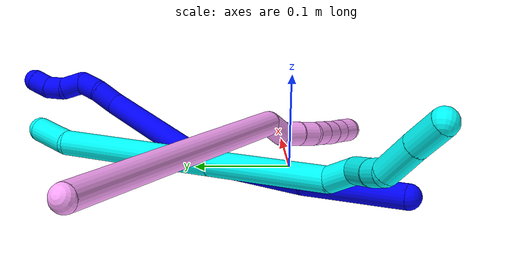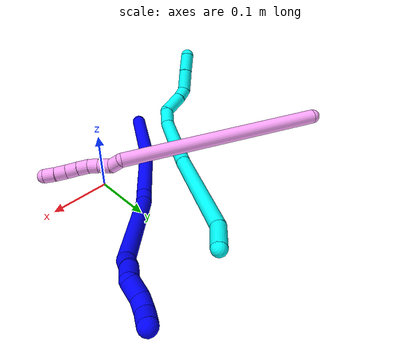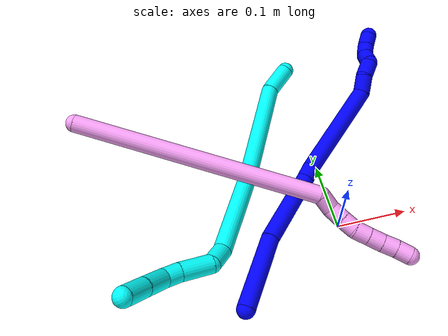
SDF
<sdf version="1.7">
 <world name="default">
  <model name="1">
   <static>0</static>
   <link name="1">
    <collision name="collision-cylinder-e_1_1_4">
     <pose>0.026451 0.00169 0.045942 -0.036772 0.522102 -0.009825</pose>
     <geometry><cylinder><radius>0.0125</radius><length>0.106079</length></cylinder></geometry>
     <surface>
      <friction><ode><mu>1.16</mu><mu2>1.16</mu2><slip1>0</slip1><slip2>0</slip2></ode></friction>
      <contact><ode><kp>1e+06</kp><kd>1</kd><max_vel>0</max_vel><min_depth>0.001</min_depth></ode></contact>
     </surface>
    </collision>
    <visual name="visual-cylinder-e_1_1_4">
     <pose>0.026451 0.00169 0.045942 -0.036772 0.522102 -0.009825</pose>
     <geometry><cylinder><radius>0.0125</radius><length>0.106079</length></cylinder></geometry>
     <material><ambient>0 0 1 1</ambient></material>
    </visual>
    <collision name="collision-cylinder-e_2_4_5">
     <pose>0.088689 0.007855 0.134403 -0.104845 0.696934 -0.03812</pose>
     <geometry><cylinder><radius>0.0125</radius><length>0.111509</length></cylinder></geometry>
     <surface>
      <friction><ode><mu>1.16</mu><mu2>1.16</mu2><slip1>0</slip1><slip2>0</slip2></ode></friction>
      <contact><ode><kp>1e+06</kp><kd>1</kd><max_vel>0</max_vel><min_depth>0.001</min_depth></ode></contact>
     </surface>
    </collision>
    <visual name="visual-cylinder-e_2_4_5">
     <pose>0.088689 0.007855 0.134403 -0.104845 0.696934 -0.03812</pose>
     <geometry><cylinder><radius>0.0125</radius><length>0.111509</length></cylinder></geometry>
     <material><ambient>0 0 1 1</ambient></material>
    </visual>
    <collision name="collision-cylinder-e_3_5_6">
     <pose>0.131276 0.012189 0.185047 0.017265 0.696705 0.00627</pose>
     <geometry><cylinder><radius>0.0125</radius><length>0.021194</length></cylinder></geometry>
     <surface>
      <friction><ode><mu>1.16</mu><mu2>1.16</mu2><slip1>0</slip1><slip2>0</slip2></ode></friction>
      <contact><ode><kp>1e+06</kp><kd>1</kd><max_vel>0</max_vel><min_depth>0.001</min_depth></ode></contact>
     </surface>
    </collision>
    <visual name="visual-cylinder-e_3_5_6">
     <pose>0.131276 0.012189 0.185047 0.017265 0.696705 0.00627</pose>
     <geometry><cylinder><radius>0.0125</radius><length>0.021194</length></cylinder></geometry>
     <material><ambient>0 0 1 1</ambient></material>
    </visual>
    <collision name="collision-cylinder-e_4_6_7">
     <pose>0.19371 0.00181 0.239351 0.218181 0.866195 0.101197</pose>
     <geometry><cylinder><radius>0.0125</radius><length>0.146047</length></cylinder></geometry>
     <surface>
      <friction><ode><mu>1.16</mu><mu2>1.16</mu2><slip1>0</slip1><slip2>0</slip2></ode></friction>
      <contact><ode><kp>1e+06</kp><kd>1</kd><max_vel>0</max_vel><min_depth>0.001</min_depth></ode></contact>
     </surface>
    </collision>
    <visual name="visual-cylinder-e_4_6_7">
     <pose>0.19371 0.00181 0.239351 0.218181 0.866195 0.101197</pose>
     <geometry><cylinder><radius>0.0125</radius><length>0.146047</length></cylinder></geometry>
     <material><ambient>0 0 1 1</ambient></material>
    </visual>
    <collision name="collision-cylinder-e_5_7_8">
     <pose>0.25574 -0.015347 0.294966 0.632609 0.500225 0.166834</pose>
     <geometry><cylinder><radius>0.0125</radius><length>0.02667</length></cylinder></geometry>
     <surface>
      <friction><ode><mu>1.16</mu><mu2>1.16</mu2><slip1>0</slip1><slip2>0</slip2></ode></friction>
      <contact><ode><kp>1e+06</kp><kd>1</kd><max_vel>0</max_vel><min_depth>0.001</min_depth></ode></contact>
     </surface>
    </collision>
    <visual name="visual-cylinder-e_5_7_8">
     <pose>0.25574 -0.015347 0.294966 0.632609 0.500225 0.166834</pose>
     <geometry><cylinder><radius>0.0125</radius><length>0.02667</length></cylinder></geometry>
     <material><ambient>0 0 1 1</ambient></material>
    </visual>
    <collision name="collision-cylinder-e_6_8_9">
     <pose>0.26962 -0.02511 0.313443 0.304909 0.668431 0.106604</pose>
     <geometry><cylinder><radius>0.0125</radius><length>0.024151</length></cylinder></geometry>
     <surface>
      <friction><ode><mu>1.16</mu><mu2>1.16</mu2><slip1>0</slip1><slip2>0</slip2></ode></friction>
      <contact><ode><kp>1e+06</kp><kd>1</kd><max_vel>0</max_vel><min_depth>0.001</min_depth></ode></contact>
     </surface>
    </collision>
    <visual name="visual-cylinder-e_6_8_9">
     <pose>0.26962 -0.02511 0.313443 0.304909 0.668431 0.106604</pose>
     <geometry><cylinder><radius>0.0125</radius><length>0.024151</length></cylinder></geometry>
     <material><ambient>0 0 1 1</ambient></material>
    </visual>
    <collision name="collision-cylinder-e_7_9_10">
     <pose>0.27748 -0.025844 0.334129 -0.179329 0.03179 -0.002858</pose>
     <geometry><cylinder><radius>0.0125</radius><length>0.023684</length></cylinder></geometry>
     <surface>
      <friction><ode><mu>1.16</mu><mu2>1.16</mu2><slip1>0</slip1><slip2>0</slip2></ode></friction>
      <contact><ode><kp>1e+06</kp><kd>1</kd><max_vel>0</max_vel><min_depth>0.001</min_depth></ode></contact>
     </surface>
    </collision>
    <visual name="visual-cylinder-e_7_9_10">
     <pose>0.27748 -0.025844 0.334129 -0.179329 0.03179 -0.002858</pose>
     <geometry><cylinder><radius>0.0125</radius><length>0.023684</length></cylinder></geometry>
     <material><ambient>0 0 1 1</ambient></material>
    </visual>
    <collision name="collision-cylinder-e_8_10_11">
     <pose>0.281664 -0.024154 0.355162 0.044833 0.385001 0.00874</pose>
     <geometry><cylinder><radius>0.0125</radius><length>0.020277</length></cylinder></geometry>
     <surface>
      <friction><ode><mu>1.16</mu><mu2>1.16</mu2><slip1>0</slip1><slip2>0</slip2></ode></friction>
      <contact><ode><kp>1e+06</kp><kd>1</kd><max_vel>0</max_vel><min_depth>0.001</min_depth></ode></contact>
     </surface>
    </collision>
    <visual name="visual-cylinder-e_8_10_11">
     <pose>0.281664 -0.024154 0.355162 0.044833 0.385001 0.00874</pose>
     <geometry><cylinder><radius>0.0125</radius><length>0.020277</length></cylinder></geometry>
     <material><ambient>0 0 1 1</ambient></material>
    </visual>
    <collision name="collision-cylinder-e_9_11_2">
     <pose>0.290997 -0.027704 0.372524 0.373934 0.572766 0.111302</pose>
     <geometry><cylinder><radius>0.0125</radius><length>0.02039</length></cylinder></geometry>
     <surface>
      <friction><ode><mu>1.16</mu><mu2>1.16</mu2><slip1>0</slip1><slip2>0</slip2></ode></friction>
      <contact><ode><kp>1e+06</kp><kd>1</kd><max_vel>0</max_vel><min_depth>0.001</min_depth></ode></contact>
     </surface>
    </collision>
    <visual name="visual-cylinder-e_9_11_2">
     <pose>0.290997 -0.027704 0.372524 0.373934 0.572766 0.111302</pose>
     <geometry><cylinder><radius>0.0125</radius><length>0.02039</length></cylinder></geometry>
     <material><ambient>0 0 1 1</ambient></material>
    </visual>
    <collision name="collision-sphere-2">
     <pose>0.296522 -0.030834 0.3805 0 -0 0</pose>
     <geometry><sphere><radius>0.0125</radius></sphere></geometry>
     <surface>
      <friction><ode><mu>1.16</mu><mu2>1.16</mu2><slip1>0</slip1><slip2>0</slip2></ode></friction>
      <contact><ode><kp>1e+06</kp><kd>1</kd><max_vel>0</max_vel><min_depth>0.001</min_depth></ode></contact>
     </surface>
    </collision>
    <visual name="visual-sphere-2">
     <pose>0.296522 -0.030834 0.3805 0 -0 0</pose>
     <geometry><sphere><radius>0.0125</radius></sphere></geometry>
     <material><ambient>0 0 1 1</ambient></material>
    </visual>
    <collision name="collision-sphere-11">
     <pose>0.285472 -0.024575 0.364549 0 -0 0</pose>
     <geometry><sphere><radius>0.0125</radius></sphere></geometry>
     <surface>
      <friction><ode><mu>1.16</mu><mu2>1.16</mu2><slip1>0</slip1><slip2>0</slip2></ode></friction>
      <contact><ode><kp>1e+06</kp><kd>1</kd><max_vel>0</max_vel><min_depth>0.001</min_depth></ode></contact>
     </surface>
    </collision>
    <visual name="visual-sphere-11">
     <pose>0.285472 -0.024575 0.364549 0 -0 0</pose>
     <geometry><sphere><radius>0.0125</radius></sphere></geometry>
     <material><ambient>0 0 1 1</ambient></material>
    </visual>
    <collision name="collision-sphere-10">
     <pose>0.277857 -0.023732 0.345775 0 -0 0</pose>
     <geometry><sphere><radius>0.0125</radius></sphere></geometry>
     <surface>
      <friction><ode><mu>1.16</mu><mu2>1.16</mu2><slip1>0</slip1><slip2>0</slip2></ode></friction>
      <contact><ode><kp>1e+06</kp><kd>1</kd><max_vel>0</max_vel><min_depth>0.001</min_depth></ode></contact>
     </surface>
    </collision>
    <visual name="visual-sphere-10">
     <pose>0.277857 -0.023732 0.345775 0 -0 0</pose>
     <geometry><sphere><radius>0.0125</radius></sphere></geometry>
     <material><ambient>0 0 1 1</ambient></material>
    </visual>
    <collision name="collision-sphere-9">
     <pose>0.277104 -0.027955 0.322482 0 -0 0</pose>
     <geometry><sphere><radius>0.0125</radius></sphere></geometry>
     <surface>
      <friction><ode><mu>1.16</mu><mu2>1.16</mu2><slip1>0</slip1><slip2>0</slip2></ode></friction>
      <contact><ode><kp>1e+06</kp><kd>1</kd><max_vel>0</max_vel><min_depth>0.001</min_depth></ode></contact>
     </surface>
    </collision>
    <visual name="visual-sphere-9">
     <pose>0.277104 -0.027955 0.322482 0 -0 0</pose>
     <geometry><sphere><radius>0.0125</radius></sphere></geometry>
     <material><ambient>0 0 1 1</ambient></material>
    </visual>
    <collision name="collision-sphere-4">
     <pose>0.052902 0.00338 0.091884 0 -0 0</pose>
     <geometry><sphere><radius>0.0125</radius></sphere></geometry>
     <surface>
      <friction><ode><mu>1.16</mu><mu2>1.16</mu2><slip1>0</slip1><slip2>0</slip2></ode></friction>
      <contact><ode><kp>1e+06</kp><kd>1</kd><max_vel>0</max_vel><min_depth>0.001</min_depth></ode></contact>
     </surface>
    </collision>
    <visual name="visual-sphere-4">
     <pose>0.052902 0.00338 0.091884 0 -0 0</pose>
     <geometry><sphere><radius>0.0125</radius></sphere></geometry>
     <material><ambient>0 0 1 1</ambient></material>
    </visual>
    <collision name="collision-sphere-1">
     <geometry><sphere><radius>0.0125</radius></sphere></geometry>
     <surface>
      <friction><ode><mu>1.16</mu><mu2>1.16</mu2><slip1>0</slip1><slip2>0</slip2></ode></friction>
      <contact><ode><kp>1e+06</kp><kd>1</kd><max_vel>0</max_vel><min_depth>0.001</min_depth></ode></contact>
     </surface>
    </collision>
    <visual name="visual-sphere-1">
     <geometry><sphere><radius>0.0125</radius></sphere></geometry>
     <material><ambient>0 0 1 1</ambient></material>
    </visual>
    <collision name="collision-sphere-8">
     <pose>0.262136 -0.022265 0.304403 0 -0 0</pose>
     <geometry><sphere><radius>0.0125</radius></sphere></geometry>
     <surface>
      <friction><ode><mu>1.16</mu><mu2>1.16</mu2><slip1>0</slip1><slip2>0</slip2></ode></friction>
      <contact><ode><kp>1e+06</kp><kd>1</kd><max_vel>0</max_vel><min_depth>0.001</min_depth></ode></contact>
     </surface>
    </collision>
    <visual name="visual-sphere-8">
     <pose>0.262136 -0.022265 0.304403 0 -0 0</pose>
     <geometry><sphere><radius>0.0125</radius></sphere></geometry>
     <material><ambient>0 0 1 1</ambient></material>
    </visual>
    <collision name="collision-sphere-5">
     <pose>0.124476 0.012329 0.176921 0 -0 0</pose>
     <geometry><sphere><radius>0.0125</radius></sphere></geometry>
     <surface>
      <friction><ode><mu>1.16</mu><mu2>1.16</mu2><slip1>0</slip1><slip2>0</slip2></ode></friction>
      <contact><ode><kp>1e+06</kp><kd>1</kd><max_vel>0</max_vel><min_depth>0.001</min_depth></ode></contact>
     </surface>
    </collision>
    <visual name="visual-sphere-5">
     <pose>0.124476 0.012329 0.176921 0 -0 0</pose>
     <geometry><sphere><radius>0.0125</radius></sphere></geometry>
     <material><ambient>0 0 1 1</ambient></material>
    </visual>
    <collision name="collision-sphere-6">
     <pose>0.138076 0.012048 0.193173 0 -0 0</pose>
     <geometry><sphere><radius>0.0125</radius></sphere></geometry>
     <surface>
      <friction><ode><mu>1.16</mu><mu2>1.16</mu2><slip1>0</slip1><slip2>0</slip2></ode></friction>
      <contact><ode><kp>1e+06</kp><kd>1</kd><max_vel>0</max_vel><min_depth>0.001</min_depth></ode></contact>
     </surface>
    </collision>
    <visual name="visual-sphere-6">
     <pose>0.138076 0.012048 0.193173 0 -0 0</pose>
     <geometry><sphere><radius>0.0125</radius></sphere></geometry>
     <material><ambient>0 0 1 1</ambient></material>
    </visual>
    <collision name="collision-sphere-7">
     <pose>0.249345 -0.008428 0.28553 0 -0 0</pose>
     <geometry><sphere><radius>0.0125</radius></sphere></geometry>
     <surface>
      <friction><ode><mu>1.16</mu><mu2>1.16</mu2><slip1>0</slip1><slip2>0</slip2></ode></friction>
      <contact><ode><kp>1e+06</kp><kd>1</kd><max_vel>0</max_vel><min_depth>0.001</min_depth></ode></contact>
     </surface>
    </collision>
    <visual name="visual-sphere-7">
     <pose>0.249345 -0.008428 0.28553 0 -0 0</pose>
     <geometry><sphere><radius>0.0125</radius></sphere></geometry>
     <material><ambient>0 0 1 1</ambient></material>
    </visual>
    <inertial>
     <pose>0.150634 -0.002209 0.193773 0 -0 0</pose>
     <mass>0.5</mass>
     <inertia>
      <ixx>0.000399</ixx>
      <ixy>0</ixy>
      <ixz>0</ixz>
      <iyy>0.000507</iyy>
      <iyz>0</iyz>
      <izz>-0.00028</izz>
     </inertia>
    </inertial>
   </link>
   <pose>-0.15592 -0.092808 0.022621 -1.74026 -0.239606 -0.003966</pose>
  </model>
  <model name="3">
   <static>0</static>
   <link name="3">
    <collision name="collision-cylinder-e_1_1_4">
     <pose>-0.014583 -0.014326 0.009003 1.00972 -0.711336 -0.404942</pose>
     <geometry><cylinder><radius>0.0125</radius><length>0.044675</length></cylinder></geometry>
     <surface>
      <friction><ode><mu>1.16</mu><mu2>1.16</mu2><slip1>0</slip1><slip2>0</slip2></ode></friction>
      <contact><ode><kp>1e+06</kp><kd>1</kd><max_vel>0</max_vel><min_depth>0.001</min_depth></ode></contact>
     </surface>
    </collision>
    <visual name="visual-cylinder-e_1_1_4">
     <pose>-0.014583 -0.014326 0.009003 1.00972 -0.711336 -0.404942</pose>
     <geometry><cylinder><radius>0.0125</radius><length>0.044675</length></cylinder></geometry>
     <material><ambient>0.003922 1 0.996078 1</ambient></material>
    </visual>
    <collision name="collision-cylinder-e_2_4_5">
     <pose>-0.095884 -0.071334 0.024796 1.41305 -0.995989 -0.868953</pose>
     <geometry><cylinder><radius>0.0125</radius><length>0.158986</length></cylinder></geometry>
     <surface>
      <friction><ode><mu>1.16</mu><mu2>1.16</mu2><slip1>0</slip1><slip2>0</slip2></ode></friction>
      <contact><ode><kp>1e+06</kp><kd>1</kd><max_vel>0</max_vel><min_depth>0.001</min_depth></ode></contact>
     </surface>
    </collision>
    <visual name="visual-cylinder-e_2_4_5">
     <pose>-0.095884 -0.071334 0.024796 1.41305 -0.995989 -0.868953</pose>
     <geometry><cylinder><radius>0.0125</radius><length>0.158986</length></cylinder></geometry>
     <material><ambient>0.003922 1 0.996078 1</ambient></material>
    </visual>
    <collision name="collision-cylinder-e_3_5_6">
     <pose>-0.211192 -0.150126 0.038393 1.38444 -0.923298 -0.782419</pose>
     <geometry><cylinder><radius>0.0125</radius><length>0.121841</length></cylinder></geometry>
     <surface>
      <friction><ode><mu>1.16</mu><mu2>1.16</mu2><slip1>0</slip1><slip2>0</slip2></ode></friction>
      <contact><ode><kp>1e+06</kp><kd>1</kd><max_vel>0</max_vel><min_depth>0.001</min_depth></ode></contact>
     </surface>
    </collision>
    <visual name="visual-cylinder-e_3_5_6">
     <pose>-0.211192 -0.150126 0.038393 1.38444 -0.923298 -0.782419</pose>
     <geometry><cylinder><radius>0.0125</radius><length>0.121841</length></cylinder></geometry>
     <material><ambient>0.003922 1 0.996078 1</ambient></material>
    </visual>
    <collision name="collision-cylinder-e_4_6_7">
     <pose>-0.267177 -0.199875 0.043553 1.69113 -0.493818 -0.554105</pose>
     <geometry><cylinder><radius>0.0125</radius><length>0.031202</length></cylinder></geometry>
     <surface>
      <friction><ode><mu>1.16</mu><mu2>1.16</mu2><slip1>0</slip1><slip2>0</slip2></ode></friction>
      <contact><ode><kp>1e+06</kp><kd>1</kd><max_vel>0</max_vel><min_depth>0.001</min_depth></ode></contact>
     </surface>
    </collision>
    <visual name="visual-cylinder-e_4_6_7">
     <pose>-0.267177 -0.199875 0.043553 1.69113 -0.493818 -0.554105</pose>
     <geometry><cylinder><radius>0.0125</radius><length>0.031202</length></cylinder></geometry>
     <material><ambient>0.003922 1 0.996078 1</ambient></material>
    </visual>
    <collision name="collision-cylinder-e_5_7_8">
     <pose>-0.275433 -0.233246 0.050791 1.14766 -0.039756 -0.025699</pose>
     <geometry><cylinder><radius>0.0125</radius><length>0.043319</length></cylinder></geometry>
     <surface>
      <friction><ode><mu>1.16</mu><mu2>1.16</mu2><slip1>0</slip1><slip2>0</slip2></ode></friction>
      <contact><ode><kp>1e+06</kp><kd>1</kd><max_vel>0</max_vel><min_depth>0.001</min_depth></ode></contact>
     </surface>
    </collision>
    <visual name="visual-cylinder-e_5_7_8">
     <pose>-0.275433 -0.233246 0.050791 1.14766 -0.039756 -0.025699</pose>
     <geometry><cylinder><radius>0.0125</radius><length>0.043319</length></cylinder></geometry>
     <material><ambient>0.003922 1 0.996078 1</ambient></material>
    </visual>
    <collision name="collision-cylinder-e_6_8_9">
     <pose>-0.278009 -0.263545 0.063202 1.2488 -0.152861 -0.110251</pose>
     <geometry><cylinder><radius>0.0125</radius><length>0.022538</length></cylinder></geometry>
     <surface>
      <friction><ode><mu>1.16</mu><mu2>1.16</mu2><slip1>0</slip1><slip2>0</slip2></ode></friction>
      <contact><ode><kp>1e+06</kp><kd>1</kd><max_vel>0</max_vel><min_depth>0.001</min_depth></ode></contact>
     </surface>
    </collision>
    <visual name="visual-cylinder-e_6_8_9">
     <pose>-0.278009 -0.263545 0.063202 1.2488 -0.152861 -0.110251</pose>
     <geometry><cylinder><radius>0.0125</radius><length>0.022538</length></cylinder></geometry>
     <material><ambient>0.003922 1 0.996078 1</ambient></material>
    </visual>
    <collision name="collision-cylinder-e_7_9_10">
     <pose>-0.283226 -0.293839 0.061635 1.82338 -0.170174 -0.219321</pose>
     <geometry><cylinder><radius>0.0125</radius><length>0.041348</length></cylinder></geometry>
     <surface>
      <friction><ode><mu>1.16</mu><mu2>1.16</mu2><slip1>0</slip1><slip2>0</slip2></ode></friction>
      <contact><ode><kp>1e+06</kp><kd>1</kd><max_vel>0</max_vel><min_depth>0.001</min_depth></ode></contact>
     </surface>
    </collision>
    <visual name="visual-cylinder-e_7_9_10">
     <pose>-0.283226 -0.293839 0.061635 1.82338 -0.170174 -0.219321</pose>
     <geometry><cylinder><radius>0.0125</radius><length>0.041348</length></cylinder></geometry>
     <material><ambient>0.003922 1 0.996078 1</ambient></material>
    </visual>
    <collision name="collision-cylinder-e_8_10_2">
     <pose>-0.289893 -0.330952 0.052881 1.77842 -0.176309 -0.217028</pose>
     <geometry><cylinder><radius>0.0125</radius><length>0.036091</length></cylinder></geometry>
     <surface>
      <friction><ode><mu>1.16</mu><mu2>1.16</mu2><slip1>0</slip1><slip2>0</slip2></ode></friction>
      <contact><ode><kp>1e+06</kp><kd>1</kd><max_vel>0</max_vel><min_depth>0.001</min_depth></ode></contact>
     </surface>
    </collision>
    <visual name="visual-cylinder-e_8_10_2">
     <pose>-0.289893 -0.330952 0.052881 1.77842 -0.176309 -0.217028</pose>
     <geometry><cylinder><radius>0.0125</radius><length>0.036091</length></cylinder></geometry>
     <material><ambient>0.003922 1 0.996078 1</ambient></material>
    </visual>
    <collision name="collision-sphere-2">
     <pose>-0.293058 -0.348336 0.049219 0 -0 0</pose>
     <geometry><sphere><radius>0.0125</radius></sphere></geometry>
     <surface>
      <friction><ode><mu>1.16</mu><mu2>1.16</mu2><slip1>0</slip1><slip2>0</slip2></ode></friction>
      <contact><ode><kp>1e+06</kp><kd>1</kd><max_vel>0</max_vel><min_depth>0.001</min_depth></ode></contact>
     </surface>
    </collision>
    <visual name="visual-sphere-2">
     <pose>-0.293058 -0.348336 0.049219 0 -0 0</pose>
     <geometry><sphere><radius>0.0125</radius></sphere></geometry>
     <material><ambient>0.003922 1 0.996078 1</ambient></material>
    </visual>
    <collision name="collision-sphere-10">
     <pose>-0.286728 -0.313568 0.056543 0 -0 0</pose>
     <geometry><sphere><radius>0.0125</radius></sphere></geometry>
     <surface>
      <friction><ode><mu>1.16</mu><mu2>1.16</mu2><slip1>0</slip1><slip2>0</slip2></ode></friction>
      <contact><ode><kp>1e+06</kp><kd>1</kd><max_vel>0</max_vel><min_depth>0.001</min_depth></ode></contact>
     </surface>
    </collision>
    <visual name="visual-sphere-10">
     <pose>-0.286728 -0.313568 0.056543 0 -0 0</pose>
     <geometry><sphere><radius>0.0125</radius></sphere></geometry>
     <material><ambient>0.003922 1 0.996078 1</ambient></material>
    </visual>
    <collision name="collision-sphere-9">
     <pose>-0.279725 -0.27411 0.066727 0 -0 0</pose>
     <geometry><sphere><radius>0.0125</radius></sphere></geometry>
     <surface>
      <friction><ode><mu>1.16</mu><mu2>1.16</mu2><slip1>0</slip1><slip2>0</slip2></ode></friction>
      <contact><ode><kp>1e+06</kp><kd>1</kd><max_vel>0</max_vel><min_depth>0.001</min_depth></ode></contact>
     </surface>
    </collision>
    <visual name="visual-sphere-9">
     <pose>-0.279725 -0.27411 0.066727 0 -0 0</pose>
     <geometry><sphere><radius>0.0125</radius></sphere></geometry>
     <material><ambient>0.003922 1 0.996078 1</ambient></material>
    </visual>
    <collision name="collision-sphere-4">
     <pose>-0.029166 -0.028652 0.018006 0 -0 0</pose>
     <geometry><sphere><radius>0.0125</radius></sphere></geometry>
     <surface>
      <friction><ode><mu>1.16</mu><mu2>1.16</mu2><slip1>0</slip1><slip2>0</slip2></ode></friction>
      <contact><ode><kp>1e+06</kp><kd>1</kd><max_vel>0</max_vel><min_depth>0.001</min_depth></ode></contact>
     </surface>
    </collision>
    <visual name="visual-sphere-4">
     <pose>-0.029166 -0.028652 0.018006 0 -0 0</pose>
     <geometry><sphere><radius>0.0125</radius></sphere></geometry>
     <material><ambient>0.003922 1 0.996078 1</ambient></material>
    </visual>
    <collision name="collision-sphere-1">
     <geometry><sphere><radius>0.0125</radius></sphere></geometry>
     <surface>
      <friction><ode><mu>1.16</mu><mu2>1.16</mu2><slip1>0</slip1><slip2>0</slip2></ode></friction>
      <contact><ode><kp>1e+06</kp><kd>1</kd><max_vel>0</max_vel><min_depth>0.001</min_depth></ode></contact>
     </surface>
    </collision>
    <visual name="visual-sphere-1">
     <geometry><sphere><radius>0.0125</radius></sphere></geometry>
     <material><ambient>0.003922 1 0.996078 1</ambient></material>
    </visual>
    <collision name="collision-sphere-8">
     <pose>-0.276293 -0.25298 0.059678 0 -0 0</pose>
     <geometry><sphere><radius>0.0125</radius></sphere></geometry>
     <surface>
      <friction><ode><mu>1.16</mu><mu2>1.16</mu2><slip1>0</slip1><slip2>0</slip2></ode></friction>
      <contact><ode><kp>1e+06</kp><kd>1</kd><max_vel>0</max_vel><min_depth>0.001</min_depth></ode></contact>
     </surface>
    </collision>
    <visual name="visual-sphere-8">
     <pose>-0.276293 -0.25298 0.059678 0 -0 0</pose>
     <geometry><sphere><radius>0.0125</radius></sphere></geometry>
     <material><ambient>0.003922 1 0.996078 1</ambient></material>
    </visual>
    <collision name="collision-sphere-5">
     <pose>-0.162602 -0.114015 0.031585 0 -0 0</pose>
     <geometry><sphere><radius>0.0125</radius></sphere></geometry>
     <surface>
      <friction><ode><mu>1.16</mu><mu2>1.16</mu2><slip1>0</slip1><slip2>0</slip2></ode></friction>
      <contact><ode><kp>1e+06</kp><kd>1</kd><max_vel>0</max_vel><min_depth>0.001</min_depth></ode></contact>
     </surface>
    </collision>
    <visual name="visual-sphere-5">
     <pose>-0.162602 -0.114015 0.031585 0 -0 0</pose>
     <geometry><sphere><radius>0.0125</radius></sphere></geometry>
     <material><ambient>0.003922 1 0.996078 1</ambient></material>
    </visual>
    <collision name="collision-sphere-6">
     <pose>-0.259782 -0.186237 0.045202 0 -0 0</pose>
     <geometry><sphere><radius>0.0125</radius></sphere></geometry>
     <surface>
      <friction><ode><mu>1.16</mu><mu2>1.16</mu2><slip1>0</slip1><slip2>0</slip2></ode></friction>
      <contact><ode><kp>1e+06</kp><kd>1</kd><max_vel>0</max_vel><min_depth>0.001</min_depth></ode></contact>
     </surface>
    </collision>
    <visual name="visual-sphere-6">
     <pose>-0.259782 -0.186237 0.045202 0 -0 0</pose>
     <geometry><sphere><radius>0.0125</radius></sphere></geometry>
     <material><ambient>0.003922 1 0.996078 1</ambient></material>
    </visual>
    <collision name="collision-sphere-7">
     <pose>-0.274572 -0.213513 0.041904 0 -0 0</pose>
     <geometry><sphere><radius>0.0125</radius></sphere></geometry>
     <surface>
      <friction><ode><mu>1.16</mu><mu2>1.16</mu2><slip1>0</slip1><slip2>0</slip2></ode></friction>
      <contact><ode><kp>1e+06</kp><kd>1</kd><max_vel>0</max_vel><min_depth>0.001</min_depth></ode></contact>
     </surface>
    </collision>
    <visual name="visual-sphere-7">
     <pose>-0.274572 -0.213513 0.041904 0 -0 0</pose>
     <geometry><sphere><radius>0.0125</radius></sphere></geometry>
     <material><ambient>0.003922 1 0.996078 1</ambient></material>
    </visual>
    <inertial>
     <pose>-0.180669 -0.153294 0.036926 0 -0 0</pose>
     <mass>0.5</mass>
     <inertia><ixx>-2e-05</ixx><ixy>0</ixy><ixz>0</ixz><iyy>0.000123</iyy><iyz>0</iyz><izz>0.000731</izz></inertia>
    </inertial>
   </link>
   <pose>-0.004179 0.260733 0.043158 -2.40845 -0.334215 1.58623</pose>
  </model>
  <model name="4">
   <static>0</static>
   <link name="4">
    <collision name="collision-cylinder-e_1_1_4">
     <pose>0.063911 -0.037507 -0.160657 2.91224 0.36959 2.03712</pose>
     <geometry><cylinder><radius>0.0125</radius><length>0.353848</length></cylinder></geometry>
     <surface>
      <friction><ode><mu>1.16</mu><mu2>1.16</mu2><slip1>0</slip1><slip2>0</slip2></ode></friction>
      <contact><ode><kp>1e+06</kp><kd>1</kd><max_vel>0</max_vel><min_depth>0.001</min_depth></ode></contact>
     </surface>
    </collision>
    <visual name="visual-cylinder-e_1_1_4">
     <pose>0.063911 -0.037507 -0.160657 2.91224 0.36959 2.03712</pose>
     <geometry><cylinder><radius>0.0125</radius><length>0.353848</length></cylinder></geometry>
     <material><ambient>1 0.65098 0.996078 1</ambient></material>
    </visual>
    <collision name="collision-cylinder-e_2_4_5">
     <pose>0.12395 -0.078086 -0.331938 2.86015 -0.336736 -1.75205</pose>
     <geometry><cylinder><radius>0.0125</radius><length>0.023435</length></cylinder></geometry>
     <surface>
      <friction><ode><mu>1.16</mu><mu2>1.16</mu2><slip1>0</slip1><slip2>0</slip2></ode></friction>
      <contact><ode><kp>1e+06</kp><kd>1</kd><max_vel>0</max_vel><min_depth>0.001</min_depth></ode></contact>
     </surface>
    </collision>
    <visual name="visual-cylinder-e_2_4_5">
     <pose>0.12395 -0.078086 -0.331938 2.86015 -0.336736 -1.75205</pose>
     <geometry><cylinder><radius>0.0125</radius><length>0.023435</length></cylinder></geometry>
     <material><ambient>1 0.65098 0.996078 1</ambient></material>
    </visual>
    <collision name="collision-cylinder-e_3_5_6">
     <pose>0.120835 -0.087766 -0.351557 2.50797 0.067684 0.205796</pose>
     <geometry><cylinder><radius>0.0125</radius><length>0.022374</length></cylinder></geometry>
     <surface>
      <friction><ode><mu>1.16</mu><mu2>1.16</mu2><slip1>0</slip1><slip2>0</slip2></ode></friction>
      <contact><ode><kp>1e+06</kp><kd>1</kd><max_vel>0</max_vel><min_depth>0.001</min_depth></ode></contact>
     </surface>
    </collision>
    <visual name="visual-cylinder-e_3_5_6">
     <pose>0.120835 -0.087766 -0.351557 2.50797 0.067684 0.205796</pose>
     <geometry><cylinder><radius>0.0125</radius><length>0.022374</length></cylinder></geometry>
     <material><ambient>1 0.65098 0.996078 1</ambient></material>
    </visual>
    <collision name="collision-cylinder-e_4_6_7">
     <pose>0.122295 -0.099672 -0.36911 2.58732 0.069722 0.243989</pose>
     <geometry><cylinder><radius>0.0125</radius><length>0.020179</length></cylinder></geometry>
     <surface>
      <friction><ode><mu>1.16</mu><mu2>1.16</mu2><slip1>0</slip1><slip2>0</slip2></ode></friction>
      <contact><ode><kp>1e+06</kp><kd>1</kd><max_vel>0</max_vel><min_depth>0.001</min_depth></ode></contact>
     </surface>
    </collision>
    <visual name="visual-cylinder-e_4_6_7">
     <pose>0.122295 -0.099672 -0.36911 2.58732 0.069722 0.243989</pose>
     <geometry><cylinder><radius>0.0125</radius><length>0.020179</length></cylinder></geometry>
     <material><ambient>1 0.65098 0.996078 1</ambient></material>
    </visual>
    <collision name="collision-cylinder-e_5_7_8">
     <pose>0.125201 -0.107905 -0.386975 2.83608 0.222071 1.25356</pose>
     <geometry><cylinder><radius>0.0125</radius><length>0.020009</length></cylinder></geometry>
     <surface>
      <friction><ode><mu>1.16</mu><mu2>1.16</mu2><slip1>0</slip1><slip2>0</slip2></ode></friction>
      <contact><ode><kp>1e+06</kp><kd>1</kd><max_vel>0</max_vel><min_depth>0.001</min_depth></ode></contact>
     </surface>
    </collision>
    <visual name="visual-cylinder-e_5_7_8">
     <pose>0.125201 -0.107905 -0.386975 2.83608 0.222071 1.25356</pose>
     <geometry><cylinder><radius>0.0125</radius><length>0.020009</length></cylinder></geometry>
     <material><ambient>1 0.65098 0.996078 1</ambient></material>
    </visual>
    <collision name="collision-cylinder-e_6_8_9">
     <pose>0.129412 -0.113565 -0.405738 2.86098 0.201262 1.24134</pose>
     <geometry><cylinder><radius>0.0125</radius><length>0.020088</length></cylinder></geometry>
     <surface>
      <friction><ode><mu>1.16</mu><mu2>1.16</mu2><slip1>0</slip1><slip2>0</slip2></ode></friction>
      <contact><ode><kp>1e+06</kp><kd>1</kd><max_vel>0</max_vel><min_depth>0.001</min_depth></ode></contact>
     </surface>
    </collision>
    <visual name="visual-cylinder-e_6_8_9">
     <pose>0.129412 -0.113565 -0.405738 2.86098 0.201262 1.24134</pose>
     <geometry><cylinder><radius>0.0125</radius><length>0.020088</length></cylinder></geometry>
     <material><ambient>1 0.65098 0.996078 1</ambient></material>
    </visual>
    <collision name="collision-cylinder-e_7_9_10">
     <pose>0.13414 -0.118931 -0.424469 2.86424 0.274901 1.56182</pose>
     <geometry><cylinder><radius>0.0125</radius><length>0.020038</length></cylinder></geometry>
     <surface>
      <friction><ode><mu>1.16</mu><mu2>1.16</mu2><slip1>0</slip1><slip2>0</slip2></ode></friction>
      <contact><ode><kp>1e+06</kp><kd>1</kd><max_vel>0</max_vel><min_depth>0.001</min_depth></ode></contact>
     </surface>
    </collision>
    <visual name="visual-cylinder-e_7_9_10">
     <pose>0.13414 -0.118931 -0.424469 2.86424 0.274901 1.56182</pose>
     <geometry><cylinder><radius>0.0125</radius><length>0.020038</length></cylinder></geometry>
     <material><ambient>1 0.65098 0.996078 1</ambient></material>
    </visual>
    <collision name="collision-cylinder-e_8_10_2">
     <pose>0.139142 -0.125104 -0.442833 2.77093 0.2299 1.10397</pose>
     <geometry><cylinder><radius>0.0125</radius><length>0.020029</length></cylinder></geometry>
     <surface>
      <friction><ode><mu>1.16</mu><mu2>1.16</mu2><slip1>0</slip1><slip2>0</slip2></ode></friction>
      <contact><ode><kp>1e+06</kp><kd>1</kd><max_vel>0</max_vel><min_depth>0.001</min_depth></ode></contact>
     </surface>
    </collision>
    <visual name="visual-cylinder-e_8_10_2">
     <pose>0.139142 -0.125104 -0.442833 2.77093 0.2299 1.10397</pose>
     <geometry><cylinder><radius>0.0125</radius><length>0.020029</length></cylinder></geometry>
     <material><ambient>1 0.65098 0.996078 1</ambient></material>
    </visual>
    <collision name="collision-sphere-2">
     <pose>0.141424 -0.128636 -0.451921 0 -0 0</pose>
     <geometry><sphere><radius>0.0125</radius></sphere></geometry>
     <surface>
      <friction><ode><mu>1.16</mu><mu2>1.16</mu2><slip1>0</slip1><slip2>0</slip2></ode></friction>
      <contact><ode><kp>1e+06</kp><kd>1</kd><max_vel>0</max_vel><min_depth>0.001</min_depth></ode></contact>
     </surface>
    </collision>
    <visual name="visual-sphere-2">
     <pose>0.141424 -0.128636 -0.451921 0 -0 0</pose>
     <geometry><sphere><radius>0.0125</radius></sphere></geometry>
     <material><ambient>1 0.65098 0.996078 1</ambient></material>
    </visual>
    <collision name="collision-sphere-10">
     <pose>0.13686 -0.121572 -0.433744 0 -0 0</pose>
     <geometry><sphere><radius>0.0125</radius></sphere></geometry>
     <surface>
      <friction><ode><mu>1.16</mu><mu2>1.16</mu2><slip1>0</slip1><slip2>0</slip2></ode></friction>
      <contact><ode><kp>1e+06</kp><kd>1</kd><max_vel>0</max_vel><min_depth>0.001</min_depth></ode></contact>
     </surface>
    </collision>
    <visual name="visual-sphere-10">
     <pose>0.13686 -0.121572 -0.433744 0 -0 0</pose>
     <geometry><sphere><radius>0.0125</radius></sphere></geometry>
     <material><ambient>1 0.65098 0.996078 1</ambient></material>
    </visual>
    <collision name="collision-sphere-9">
     <pose>0.13142 -0.116291 -0.415195 0 -0 0</pose>
     <geometry><sphere><radius>0.0125</radius></sphere></geometry>
     <surface>
      <friction><ode><mu>1.16</mu><mu2>1.16</mu2><slip1>0</slip1><slip2>0</slip2></ode></friction>
      <contact><ode><kp>1e+06</kp><kd>1</kd><max_vel>0</max_vel><min_depth>0.001</min_depth></ode></contact>
     </surface>
    </collision>
    <visual name="visual-sphere-9">
     <pose>0.13142 -0.116291 -0.415195 0 -0 0</pose>
     <geometry><sphere><radius>0.0125</radius></sphere></geometry>
     <material><ambient>1 0.65098 0.996078 1</ambient></material>
    </visual>
    <collision name="collision-sphere-4">
     <pose>0.127822 -0.075015 -0.321314 0 -0 0</pose>
     <geometry><sphere><radius>0.0125</radius></sphere></geometry>
     <surface>
      <friction><ode><mu>1.16</mu><mu2>1.16</mu2><slip1>0</slip1><slip2>0</slip2></ode></friction>
      <contact><ode><kp>1e+06</kp><kd>1</kd><max_vel>0</max_vel><min_depth>0.001</min_depth></ode></contact>
     </surface>
    </collision>
    <visual name="visual-sphere-4">
     <pose>0.127822 -0.075015 -0.321314 0 -0 0</pose>
     <geometry><sphere><radius>0.0125</radius></sphere></geometry>
     <material><ambient>1 0.65098 0.996078 1</ambient></material>
    </visual>
    <collision name="collision-sphere-1">
     <geometry><sphere><radius>0.0125</radius></sphere></geometry>
     <surface>
      <friction><ode><mu>1.16</mu><mu2>1.16</mu2><slip1>0</slip1><slip2>0</slip2></ode></friction>
      <contact><ode><kp>1e+06</kp><kd>1</kd><max_vel>0</max_vel><min_depth>0.001</min_depth></ode></contact>
     </surface>
    </collision>
    <visual name="visual-sphere-1">
     <geometry><sphere><radius>0.0125</radius></sphere></geometry>
     <material><ambient>1 0.65098 0.996078 1</ambient></material>
    </visual>
    <collision name="collision-sphere-8">
     <pose>0.127405 -0.11084 -0.396282 0 -0 0</pose>
     <geometry><sphere><radius>0.0125</radius></sphere></geometry>
     <surface>
      <friction><ode><mu>1.16</mu><mu2>1.16</mu2><slip1>0</slip1><slip2>0</slip2></ode></friction>
      <contact><ode><kp>1e+06</kp><kd>1</kd><max_vel>0</max_vel><min_depth>0.001</min_depth></ode></contact>
     </surface>
    </collision>
    <visual name="visual-sphere-8">
     <pose>0.127405 -0.11084 -0.396282 0 -0 0</pose>
     <geometry><sphere><radius>0.0125</radius></sphere></geometry>
     <material><ambient>1 0.65098 0.996078 1</ambient></material>
    </visual>
    <collision name="collision-sphere-5">
     <pose>0.120079 -0.081158 -0.342563 0 -0 0</pose>
     <geometry><sphere><radius>0.0125</radius></sphere></geometry>
     <surface>
      <friction><ode><mu>1.16</mu><mu2>1.16</mu2><slip1>0</slip1><slip2>0</slip2></ode></friction>
      <contact><ode><kp>1e+06</kp><kd>1</kd><max_vel>0</max_vel><min_depth>0.001</min_depth></ode></contact>
     </surface>
    </collision>
    <visual name="visual-sphere-5">
     <pose>0.120079 -0.081158 -0.342563 0 -0 0</pose>
     <geometry><sphere><radius>0.0125</radius></sphere></geometry>
     <material><ambient>1 0.65098 0.996078 1</ambient></material>
    </visual>
    <collision name="collision-sphere-6">
     <pose>0.121592 -0.094375 -0.360552 0 -0 0</pose>
     <geometry><sphere><radius>0.0125</radius></sphere></geometry>
     <surface>
      <friction><ode><mu>1.16</mu><mu2>1.16</mu2><slip1>0</slip1><slip2>0</slip2></ode></friction>
      <contact><ode><kp>1e+06</kp><kd>1</kd><max_vel>0</max_vel><min_depth>0.001</min_depth></ode></contact>
     </surface>
    </collision>
    <visual name="visual-sphere-6">
     <pose>0.121592 -0.094375 -0.360552 0 -0 0</pose>
     <geometry><sphere><radius>0.0125</radius></sphere></geometry>
     <material><ambient>1 0.65098 0.996078 1</ambient></material>
    </visual>
    <collision name="collision-sphere-7">
     <pose>0.122998 -0.104969 -0.377668 0 -0 0</pose>
     <geometry><sphere><radius>0.0125</radius></sphere></geometry>
     <surface>
      <friction><ode><mu>1.16</mu><mu2>1.16</mu2><slip1>0</slip1><slip2>0</slip2></ode></friction>
      <contact><ode><kp>1e+06</kp><kd>1</kd><max_vel>0</max_vel><min_depth>0.001</min_depth></ode></contact>
     </surface>
    </collision>
    <visual name="visual-sphere-7">
     <pose>0.122998 -0.104969 -0.377668 0 -0 0</pose>
     <geometry><sphere><radius>0.0125</radius></sphere></geometry>
     <material><ambient>1 0.65098 0.996078 1</ambient></material>
    </visual>
    <inertial>
     <pose>0.082541 -0.056812 -0.226419 0 -0 0</pose>
     <mass>0.5</mass>
     <inertia>
      <ixx>0.001553</ixx>
      <ixy>0</ixy>
      <ixz>0</ixz>
      <iyy>0.004972</iyy>
      <iyz>0</iyz>
      <izz>-0.000585</izz>
     </inertia>
    </inertial>
   </link>
   <pose>-0.328642 0.199562 0.087183 -0.599335 -0.922627 0.243515</pose>
  </model>
 </world>
</sdf>
